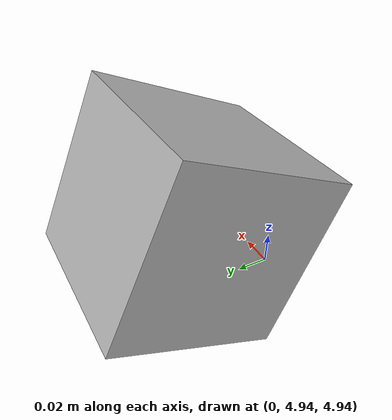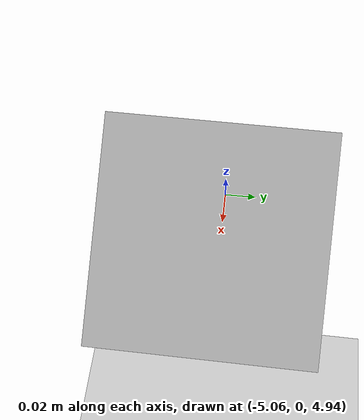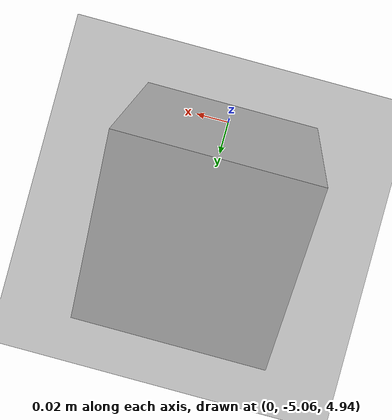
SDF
<sdf version="1.7">
 <world name="default">
  <light name="sun" type="directional">
   <pose>0 0 10 0 -0 0</pose>
   <diffuse>0.8 0.8 0.8 1</diffuse>
   <specular>0.2 0.2 0.2 1</specular>
   <attenuation>
    <range>1000</range>
    <constant>0.9</constant>
    <linear>0.01</linear>
    <quadratic>0.001</quadratic>
   </attenuation>
   <direction>-0.5 0.1 -0.9</direction>
   <spot><inner_angle>0</inner_angle><outer_angle>0</outer_angle><falloff>0</falloff></spot>
  </light>
  <model name="ground_plane">
   <static>1</static>
   <link name="link">
    <collision name="collision">
     <geometry><plane><normal>0 0 1</normal><size>100 100</size></plane></geometry>
     <surface>
      <contact><collide_bitmask>65535</collide_bitmask></contact>
      <friction><ode><mu>100</mu><mu2>50</mu2></ode></friction>
     </surface>
    </collision>
    <visual name="visual">
     <cast_shadows>0</cast_shadows>
     <geometry><plane><normal>0 0 1</normal><size>100 100</size></plane></geometry>
     <material>
      <script><uri>file://media/materials/scripts/gazebo.material</uri><name>Gazebo/Grey</name></script>
     </material>
    </visual>
   </link>
  </model>
  <gravity>0 0 -9.8</gravity>
  <magnetic_field>6e-06 2.3e-05 -4.2e-05</magnetic_field>
  <atmosphere type="adiabatic"/>
  <physics type="ode">
   <max_step_size>0.001</max_step_size>
   <real_time_factor>1</real_time_factor>
   <real_time_update_rate>1000</real_time_update_rate>
  </physics>
  <scene><ambient>0.4 0.4 0.4 1</ambient><background>0.7 0.7 0.7 1</background><shadows>1</shadows></scene>
  <spherical_coordinates>
   <surface_model>EARTH_WGS84</surface_model>
   <latitude_deg>0</latitude_deg>
   <longitude_deg>0</longitude_deg>
   <elevation>0</elevation>
   <heading_deg>0</heading_deg>
  </spherical_coordinates>
  <model name="camera_1">
   <link name="link">
    <inertial>
     <mass>0.1</mass>
     <inertia>
      <ixx>0.000166667</ixx>
      <iyy>0.000166667</iyy>
      <izz>0.000166667</izz>
      <ixy>0</ixy>
      <ixz>0</ixz>
      <iyz>0</iyz>
     </inertia>
    </inertial>
    <sensor name="camera" type="camera">
     <camera>
      <horizontal_fov>1.047</horizontal_fov>
      <image><width>320</width><height>240</height></image>
      <clip><near>0.1</near><far>100</far></clip>
     </camera>
     <plugin name="depth_camera_controller" filename="libgazebo_ros_camera.so">
      <robotNamespace>camera_1</robotNamespace>
      <cameraName>camera_1</cameraName>
      <frameName>camera_1_data</frameName>
      <hack_baseline>0</hack_baseline>
      <min_depth>0.001</min_depth>
     </plugin>
     <always_on>1</always_on>
     <update_rate>30</update_rate>
     <visualize>1</visualize>
    </sensor>
    <visual name="visual">
     <geometry><box><size>0.1 0.1 0.1</size></box></geometry>
     <material><shader type="pixel"/></material>
    </visual>
    <collision name="collision">
     <geometry><box><size>0.1 0.1 0.1</size></box></geometry>
     <surface>
      <friction>
       <ode><mu>1</mu><mu2>1</mu2><fdir1>0 0 0</fdir1><slip1>0</slip1><slip2>0</slip2></ode>
       <torsional>
        <coefficient>1</coefficient>
        <patch_radius>0</patch_radius>
        <surface_radius>0</surface_radius>
        <use_patch_radius>1</use_patch_radius>
        <ode><slip>0</slip></ode>
       </torsional>
      </friction>
      <bounce><restitution_coefficient>0</restitution_coefficient><threshold>1e+06</threshold></bounce>
      <contact>
       <collide_without_contact>0</collide_without_contact>
       <collide_without_contact_bitmask>1</collide_without_contact_bitmask>
       <collide_bitmask>1</collide_bitmask>
       <ode>
        <soft_cfm>0</soft_cfm>
        <soft_erp>0.2</soft_erp>
        <kp>1e+13</kp>
        <kd>1</kd>
        <max_vel>0.01</max_vel>
        <min_depth>0</min_depth>
       </ode>
       <bullet>
        <split_impulse>1</split_impulse>
        <split_impulse_penetration_threshold>-0.01</split_impulse_penetration_threshold>
        <soft_cfm>0</soft_cfm>
        <soft_erp>0.2</soft_erp>
        <kp>1e+13</kp>
        <kd>1</kd>
       </bullet>
      </contact>
     </surface>
    </collision>
   </link>
   <static>1</static>
   <pose>5 0 5 0 0.40187 3.1415</pose>
  </model>
  <model name="camera_2">
   <link name="link">
    <inertial>
     <mass>0.1</mass>
     <inertia>
      <ixx>0.000166667</ixx>
      <iyy>0.000166667</iyy>
      <izz>0.000166667</izz>
      <ixy>0</ixy>
      <ixz>0</ixz>
      <iyz>0</iyz>
     </inertia>
    </inertial>
    <sensor name="camera" type="camera">
     <camera>
      <horizontal_fov>1.047</horizontal_fov>
      <image><width>320</width><height>240</height></image>
      <clip><near>0.1</near><far>100</far></clip>
     </camera>
     <plugin name="depth_camera_controller" filename="libgazebo_ros_camera.so">
      <robotNamespace>camera_2</robotNamespace>
      <cameraName>camera_2</cameraName>
      <frameName>camera_2_data</frameName>
      <hack_baseline>0</hack_baseline>
      <min_depth>0.001</min_depth>
     </plugin>
     <always_on>1</always_on>
     <update_rate>30</update_rate>
     <visualize>1</visualize>
    </sensor>
    <visual name="visual">
     <geometry><box><size>0.1 0.1 0.1</size></box></geometry>
     <material><shader type="pixel"/></material>
    </visual>
    <collision name="collision">
     <geometry><box><size>0.1 0.1 0.1</size></box></geometry>
     <surface>
      <friction>
       <ode><mu>1</mu><mu2>1</mu2><fdir1>0 0 0</fdir1><slip1>0</slip1><slip2>0</slip2></ode>
       <torsional>
        <coefficient>1</coefficient>
        <patch_radius>0</patch_radius>
        <surface_radius>0</surface_radius>
        <use_patch_radius>1</use_patch_radius>
        <ode><slip>0</slip></ode>
       </torsional>
      </friction>
      <bounce><restitution_coefficient>0</restitution_coefficient><threshold>1e+06</threshold></bounce>
      <contact>
       <collide_without_contact>0</collide_without_contact>
       <collide_without_contact_bitmask>1</collide_without_contact_bitmask>
       <collide_bitmask>1</collide_bitmask>
       <ode>
        <soft_cfm>0</soft_cfm>
        <soft_erp>0.2</soft_erp>
        <kp>1e+13</kp>
        <kd>1</kd>
        <max_vel>0.01</max_vel>
        <min_depth>0</min_depth>
       </ode>
       <bullet>
        <split_impulse>1</split_impulse>
        <split_impulse_penetration_threshold>-0.01</split_impulse_penetration_threshold>
        <soft_cfm>0</soft_cfm>
        <soft_erp>0.2</soft_erp>
        <kp>1e+13</kp>
        <kd>1</kd>
       </bullet>
      </contact>
     </surface>
    </collision>
   </link>
   <static>1</static>
   <pose>-5 0 5 0 0.40187 0</pose>
  </model>
  <model name="camera_3">
   <link name="link">
    <inertial>
     <mass>0.1</mass>
     <inertia>
      <ixx>0.000166667</ixx>
      <iyy>0.000166667</iyy>
      <izz>0.000166667</izz>
      <ixy>0</ixy>
      <ixz>0</ixz>
      <iyz>0</iyz>
     </inertia>
    </inertial>
    <sensor name="camera" type="camera">
     <camera>
      <horizontal_fov>1.047</horizontal_fov>
      <image><width>320</width><height>240</height></image>
      <clip><near>0.1</near><far>100</far></clip>
     </camera>
     <plugin name="depth_camera_controller" filename="libgazebo_ros_camera.so">
      <robotNamespace>camera_3</robotNamespace>
      <cameraName>camera_3</cameraName>
      <frameName>camera_3_data</frameName>
      <hack_baseline>0</hack_baseline>
      <min_depth>0.001</min_depth>
     </plugin>
     <always_on>1</always_on>
     <update_rate>30</update_rate>
     <visualize>1</visualize>
    </sensor>
    <visual name="visual">
     <geometry><box><size>0.1 0.1 0.1</size></box></geometry>
     <material><shader type="pixel"/></material>
    </visual>
    <collision name="collision">
     <geometry><box><size>0.1 0.1 0.1</size></box></geometry>
     <surface>
      <friction>
       <ode><mu>1</mu><mu2>1</mu2><fdir1>0 0 0</fdir1><slip1>0</slip1><slip2>0</slip2></ode>
       <torsional>
        <coefficient>1</coefficient>
        <patch_radius>0</patch_radius>
        <surface_radius>0</surface_radius>
        <use_patch_radius>1</use_patch_radius>
        <ode><slip>0</slip></ode>
       </torsional>
      </friction>
      <bounce><restitution_coefficient>0</restitution_coefficient><threshold>1e+06</threshold></bounce>
      <contact>
       <collide_without_contact>0</collide_without_contact>
       <collide_without_contact_bitmask>1</collide_without_contact_bitmask>
       <collide_bitmask>1</collide_bitmask>
       <ode>
        <soft_cfm>0</soft_cfm>
        <soft_erp>0.2</soft_erp>
        <kp>1e+13</kp>
        <kd>1</kd>
        <max_vel>0.01</max_vel>
        <min_depth>0</min_depth>
       </ode>
       <bullet>
        <split_impulse>1</split_impulse>
        <split_impulse_penetration_threshold>-0.01</split_impulse_penetration_threshold>
        <soft_cfm>0</soft_cfm>
        <soft_erp>0.2</soft_erp>
        <kp>1e+13</kp>
        <kd>1</kd>
       </bullet>
      </contact>
     </surface>
    </collision>
   </link>
   <static>1</static>
   <pose>0 5 5 0 0.40187 -1.5707</pose>
  </model>
  <model name="camera_4">
   <link name="link">
    <inertial>
     <mass>0.1</mass>
     <inertia>
      <ixx>0.000166667</ixx>
      <iyy>0.000166667</iyy>
      <izz>0.000166667</izz>
      <ixy>0</ixy>
      <ixz>0</ixz>
      <iyz>0</iyz>
     </inertia>
    </inertial>
    <sensor name="camera" type="camera">
     <camera>
      <horizontal_fov>1.047</horizontal_fov>
      <image><width>320</width><height>240</height></image>
      <clip><near>0.1</near><far>100</far></clip>
     </camera>
     <plugin name="depth_camera_controller" filename="libgazebo_ros_camera.so">
      <robotNamespace>camera_4</robotNamespace>
      <cameraName>camera_4</cameraName>
      <frameName>camera_4_data</frameName>
      <hack_baseline>0</hack_baseline>
      <min_depth>0.001</min_depth>
     </plugin>
     <always_on>1</always_on>
     <update_rate>30</update_rate>
     <visualize>1</visualize>
    </sensor>
    <visual name="visual">
     <geometry><box><size>0.1 0.1 0.1</size></box></geometry>
     <material><shader type="pixel"/></material>
    </visual>
    <collision name="collision">
     <geometry><box><size>0.1 0.1 0.1</size></box></geometry>
     <surface>
      <friction>
       <ode><mu>1</mu><mu2>1</mu2><fdir1>0 0 0</fdir1><slip1>0</slip1><slip2>0</slip2></ode>
       <torsional>
        <coefficient>1</coefficient>
        <patch_radius>0</patch_radius>
        <surface_radius>0</surface_radius>
        <use_patch_radius>1</use_patch_radius>
        <ode><slip>0</slip></ode>
       </torsional>
      </friction>
      <bounce><restitution_coefficient>0</restitution_coefficient><threshold>1e+06</threshold></bounce>
      <contact>
       <collide_without_contact>0</collide_without_contact>
       <collide_without_contact_bitmask>1</collide_without_contact_bitmask>
       <collide_bitmask>1</collide_bitmask>
       <ode>
        <soft_cfm>0</soft_cfm>
        <soft_erp>0.2</soft_erp>
        <kp>1e+13</kp>
        <kd>1</kd>
        <max_vel>0.01</max_vel>
        <min_depth>0</min_depth>
       </ode>
       <bullet>
        <split_impulse>1</split_impulse>
        <split_impulse_penetration_threshold>-0.01</split_impulse_penetration_threshold>
        <soft_cfm>0</soft_cfm>
        <soft_erp>0.2</soft_erp>
        <kp>1e+13</kp>
        <kd>1</kd>
       </bullet>
      </contact>
     </surface>
    </collision>
   </link>
   <static>1</static>
   <pose>0 -5 5 -0 0.40187 1.5707</pose>
  </model>
 </world>
</sdf>
